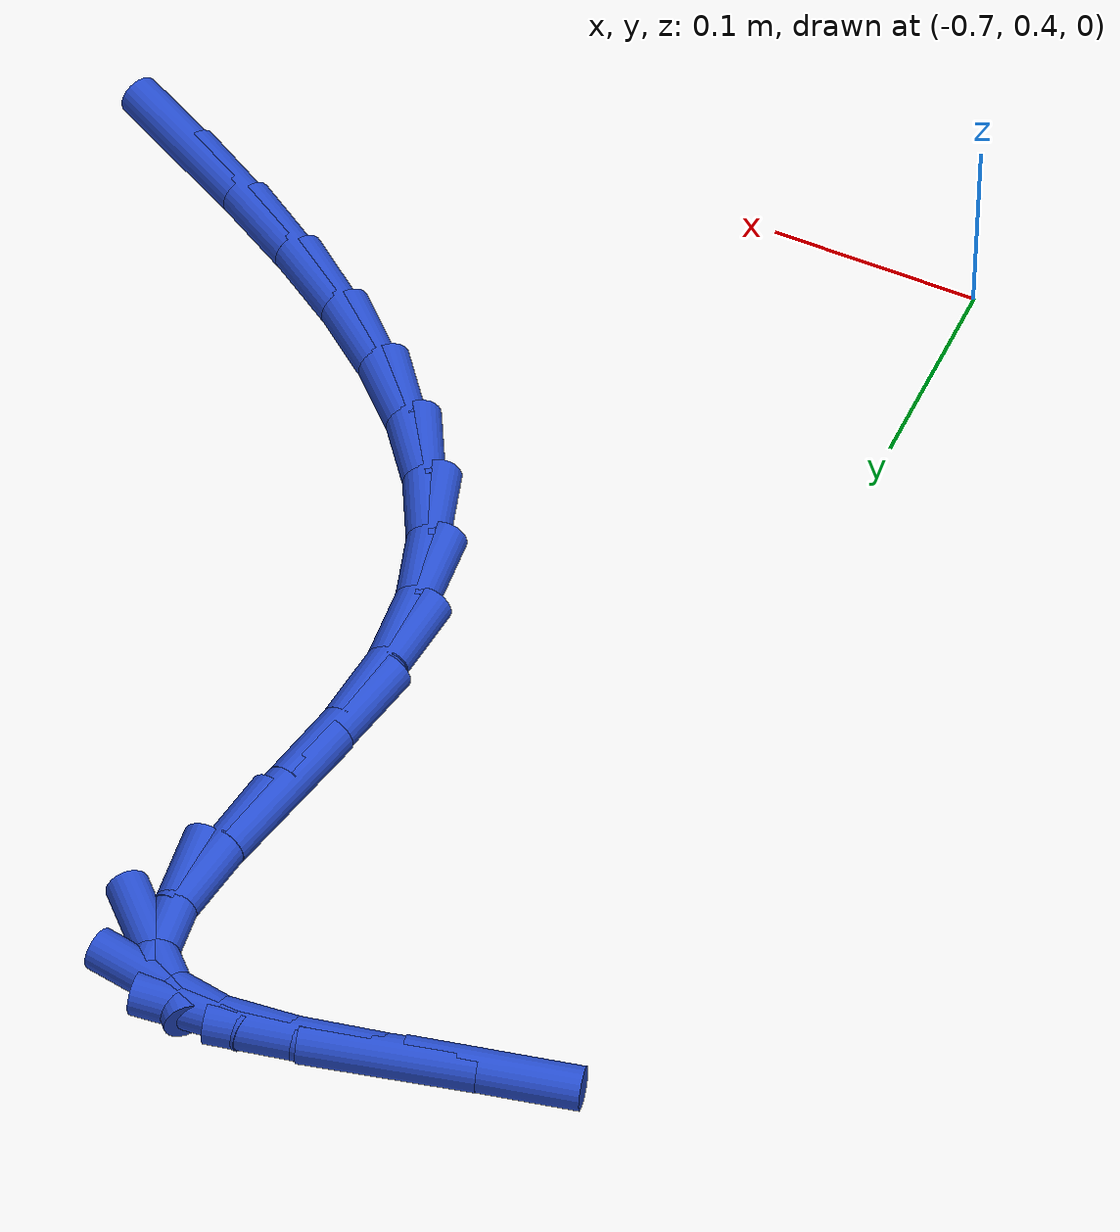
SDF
<sdf version="1.6">
 <world name="default">
  <model name="ground_plane">
   <static>1</static>
   <link name="link">
    <collision name="collision">
     <geometry><plane><normal>0 0 1</normal><size>100 100</size></plane></geometry>
     <surface><friction><ode><mu>100</mu><mu2>50</mu2></ode></friction></surface>
    </collision>
    <visual name="visual">
     <cast_shadows>0</cast_shadows>
     <geometry><plane><normal>0 0 1</normal><size>100 100</size></plane></geometry>
     <material>
      <script><uri>file://media/materials/scripts/gazebo.material</uri><name>Gazebo/WhiteGlow</name></script>
     </material>
    </visual>
   </link>
  </model>
  <model name="line">
   <link name="link_16">
    <pose>-0.33074824398908714 0.47077515719232504 0.01 0 1.57 -0.4889250011104995</pose>
    <collision name="collision">
     <geometry><cylinder><radius>0.01</radius><length>0.08</length></cylinder></geometry>
    </collision>
    <visual name="visual">
     <material>
      <script><name>Gazebo/Blue</name><uri>file://media/materials/scripts/gazebo.material</uri></script>
     </material>
     <geometry><cylinder><radius>0.01</radius><length>0.08</length></cylinder></geometry>
    </visual>
   </link>
   <link name="link_17">
    <pose>-0.3686138338384983 0.49091995763558555 0.01 0 1.57 -0.527082802370326</pose>
    <collision name="collision">
     <geometry><cylinder><radius>0.01</radius><length>0.08</length></cylinder></geometry>
    </collision>
    <visual name="visual">
     <material>
      <script><name>Gazebo/Blue</name><uri>file://media/materials/scripts/gazebo.material</uri></script>
     </material>
     <geometry><cylinder><radius>0.01</radius><length>0.08</length></cylinder></geometry>
    </visual>
   </link>
   <link name="link_18">
    <pose>-0.4047488287094993 0.5119507060518661 0.01 0 1.57 -0.5852770806005103</pose>
    <collision name="collision">
     <geometry><cylinder><radius>0.01</radius><length>0.08</length></cylinder></geometry>
    </collision>
    <visual name="visual">
     <material>
      <script><name>Gazebo/Blue</name><uri>file://media/materials/scripts/gazebo.material</uri></script>
     </material>
     <geometry><cylinder><radius>0.01</radius><length>0.08</length></cylinder></geometry>
    </visual>
   </link>
   <link name="link_19">
    <pose>-0.43841582700111426 0.5342630691704833 0.01 0 1.57 -0.6670953673856461</pose>
    <collision name="collision">
     <geometry><cylinder><radius>0.01</radius><length>0.08</length></cylinder></geometry>
    </collision>
    <visual name="visual">
     <material>
      <script><name>Gazebo/Blue</name><uri>file://media/materials/scripts/gazebo.material</uri></script>
     </material>
     <geometry><cylinder><radius>0.01</radius><length>0.08</length></cylinder></geometry>
    </visual>
   </link>
   <link name="link_20">
    <pose>-0.4688774271123673 0.5582527137207538 0.01 0 1.57 -0.7767221632854268</pose>
    <collision name="collision">
     <geometry><cylinder><radius>0.01</radius><length>0.08</length></cylinder></geometry>
    </collision>
    <visual name="visual">
     <material>
      <script><name>Gazebo/Blue</name><uri>file://media/materials/scripts/gazebo.material</uri></script>
     </material>
     <geometry><cylinder><radius>0.01</radius><length>0.08</length></cylinder></geometry>
    </visual>
   </link>
   <link name="link_21">
    <pose>-0.4953962274422826 0.5843153064319944 0.01 0 1.57 -0.9174938906017656</pose>
    <collision name="collision">
     <geometry><cylinder><radius>0.01</radius><length>0.08</length></cylinder></geometry>
    </collision>
    <visual name="visual">
     <material>
      <script><name>Gazebo/Blue</name><uri>file://media/materials/scripts/gazebo.material</uri></script>
     </material>
     <geometry><cylinder><radius>0.01</radius><length>0.08</length></cylinder></geometry>
    </visual>
   </link>
   <link name="link_22">
    <pose>-0.5172348263898843 0.6128465140335215 0.01 0 1.57 -1.088889585105464</pose>
    <collision name="collision">
     <geometry><cylinder><radius>0.01</radius><length>0.08</length></cylinder></geometry>
    </collision>
    <visual name="visual">
     <material>
      <script><name>Gazebo/Blue</name><uri>file://media/materials/scripts/gazebo.material</uri></script>
     </material>
     <geometry><cylinder><radius>0.01</radius><length>0.08</length></cylinder></geometry>
    </visual>
   </link>
   <link name="link_23">
    <pose>-0.5336558223541966 0.644242003254652 0.01 0 1.57 -1.2828015319334976</pose>
    <collision name="collision">
     <geometry><cylinder><radius>0.01</radius><length>0.08</length></cylinder></geometry>
    </collision>
    <visual name="visual">
     <material>
      <script><name>Gazebo/Blue</name><uri>file://media/materials/scripts/gazebo.material</uri></script>
     </material>
     <geometry><cylinder><radius>0.01</radius><length>0.08</length></cylinder></geometry>
    </visual>
   </link>
   <link name="link_24">
    <pose>-0.5439218137342436 0.6788974408247026 0.01 0 1.57 -1.4829651259856962</pose>
    <collision name="collision">
     <geometry><cylinder><radius>0.01</radius><length>0.08</length></cylinder></geometry>
    </collision>
    <visual name="visual">
     <material>
      <script><name>Gazebo/Blue</name><uri>file://media/materials/scripts/gazebo.material</uri></script>
     </material>
     <geometry><cylinder><radius>0.01</radius><length>0.08</length></cylinder></geometry>
    </visual>
   </link>
   <link name="link_25">
    <pose>-0.5472953989290498 0.7172084934729901 0.01 0 1.57 1.4776111202885178</pose>
    <collision name="collision">
     <geometry><cylinder><radius>0.01</radius><length>0.08</length></cylinder></geometry>
    </collision>
    <visual name="visual">
     <material>
      <script><name>Gazebo/Blue</name><uri>file://media/materials/scripts/gazebo.material</uri></script>
     </material>
     <geometry><cylinder><radius>0.01</radius><length>0.08</length></cylinder></geometry>
    </visual>
   </link>
   <link name="link_26">
    <pose>-0.5433597274383125 0.759321112624327 0.01 0 1.57 1.3759694845394403</pose>
    <collision name="collision">
     <geometry><cylinder><radius>0.01</radius><length>0.08</length></cylinder></geometry>
    </collision>
    <visual name="visual">
     <material>
      <script><name>Gazebo/Blue</name><uri>file://media/materials/scripts/gazebo.material</uri></script>
     </material>
     <geometry><cylinder><radius>0.01</radius><length>0.08</length></cylinder></geometry>
    </visual>
   </link>
   <link name="link_27">
    <pose>-0.5347380154660346 0.8030129808653238 0.01 0 1.57 1.3582862790561092</pose>
    <collision name="collision">
     <geometry><cylinder><radius>0.01</radius><length>0.08</length></cylinder></geometry>
    </collision>
    <visual name="visual">
     <material>
      <script><name>Gazebo/Blue</name><uri>file://media/materials/scripts/gazebo.material</uri></script>
     </material>
     <geometry><cylinder><radius>0.01</radius><length>0.08</length></cylinder></geometry>
    </visual>
   </link>
   <link name="link_28">
    <pose>-0.5257315225989049 0.8447545535935493 0.01 0 1.57 1.4317631129664112</pose>
    <collision name="collision">
     <geometry><cylinder><radius>0.01</radius><length>0.08</length></cylinder></geometry>
    </collision>
    <visual name="visual">
     <material>
      <script><name>Gazebo/Blue</name><uri>file://media/materials/scripts/gazebo.material</uri></script>
     </material>
     <geometry><cylinder><radius>0.01</radius><length>0.08</length></cylinder></geometry>
    </visual>
   </link>
   <link name="link_29">
    <pose>-0.5206591189850854 0.8810025672497138 0.01 0 1.57 -1.4544401839341699</pose>
    <collision name="collision">
     <geometry><cylinder><radius>0.01</radius><length>0.08</length></cylinder></geometry>
    </collision>
    <visual name="visual">
     <material>
      <script><name>Gazebo/Blue</name><uri>file://media/materials/scripts/gazebo.material</uri></script>
     </material>
     <geometry><cylinder><radius>0.01</radius><length>0.08</length></cylinder></geometry>
    </visual>
   </link>
   <link name="link_30">
    <pose>-0.5238396747727394 0.9082137582745284 0.01 0 1.57 -0.7975469096733435</pose>
    <collision name="collision">
     <geometry><cylinder><radius>0.01</radius><length>0.08</length></cylinder></geometry>
    </collision>
    <visual name="visual">
     <material>
      <script><name>Gazebo/Blue</name><uri>file://media/materials/scripts/gazebo.material</uri></script>
     </material>
     <geometry><cylinder><radius>0.01</radius><length>0.08</length></cylinder></geometry>
    </visual>
   </link>
   <link name="link_31">
    <pose>-0.5388274271244949 0.9235701723424261 0.01 0 1.57 -0.1825803853555193</pose>
    <collision name="collision">
     <geometry><cylinder><radius>0.01</radius><length>0.08</length></cylinder></geometry>
    </collision>
    <visual name="visual">
     <material>
      <script><name>Gazebo/Blue</name><uri>file://media/materials/scripts/gazebo.material</uri></script>
     </material>
     <geometry><cylinder><radius>0.01</radius><length>0.08</length></cylinder></geometry>
    </visual>
   </link>
   <link name="link_32">
    <pose>-0.5648350565355627 0.9283721330457155 0.01 0 1.57 0.08623113423185368</pose>
    <collision name="collision">
     <geometry><cylinder><radius>0.01</radius><length>0.08</length></cylinder></geometry>
    </collision>
    <visual name="visual">
     <material>
      <script><name>Gazebo/Blue</name><uri>file://media/materials/scripts/gazebo.material</uri></script>
     </material>
     <geometry><cylinder><radius>0.01</radius><length>0.08</length></cylinder></geometry>
    </visual>
   </link>
   <link name="link_33">
    <pose>-0.5995448784784578 0.9253716249734535 0.01 0 1.57 0.19343416865101154</pose>
    <collision name="collision">
     <geometry><cylinder><radius>0.01</radius><length>0.08</length></cylinder></geometry>
    </collision>
    <visual name="visual">
     <material>
      <script><name>Gazebo/Blue</name><uri>file://media/materials/scripts/gazebo.material</uri></script>
     </material>
     <geometry><cylinder><radius>0.01</radius><length>0.08</length></cylinder></geometry>
    </visual>
   </link>
   <link name="link_34">
    <pose>-0.640637487300593 0.9173222653253129 0.01 0 1.57 0.22519990240933957</pose>
    <collision name="collision">
     <geometry><cylinder><radius>0.01</radius><length>0.08</length></cylinder></geometry>
    </collision>
    <visual name="visual">
     <material>
      <script><name>Gazebo/Blue</name><uri>file://media/materials/scripts/gazebo.material</uri></script>
     </material>
     <geometry><cylinder><radius>0.01</radius><length>0.08</length></cylinder></geometry>
    </visual>
   </link>
   <link name="link_35">
    <pose>-0.6857934773493802 0.906977671300966 0.01 0 1.57 0.2077521247927817</pose>
    <collision name="collision">
     <geometry><cylinder><radius>0.01</radius><length>0.08</length></cylinder></geometry>
    </collision>
    <visual name="visual">
     <material>
      <script><name>Gazebo/Blue</name><uri>file://media/materials/scripts/gazebo.material</uri></script>
     </material>
     <geometry><cylinder><radius>0.01</radius><length>0.08</length></cylinder></geometry>
    </visual>
   </link>
  </model>
 </world>
</sdf>
